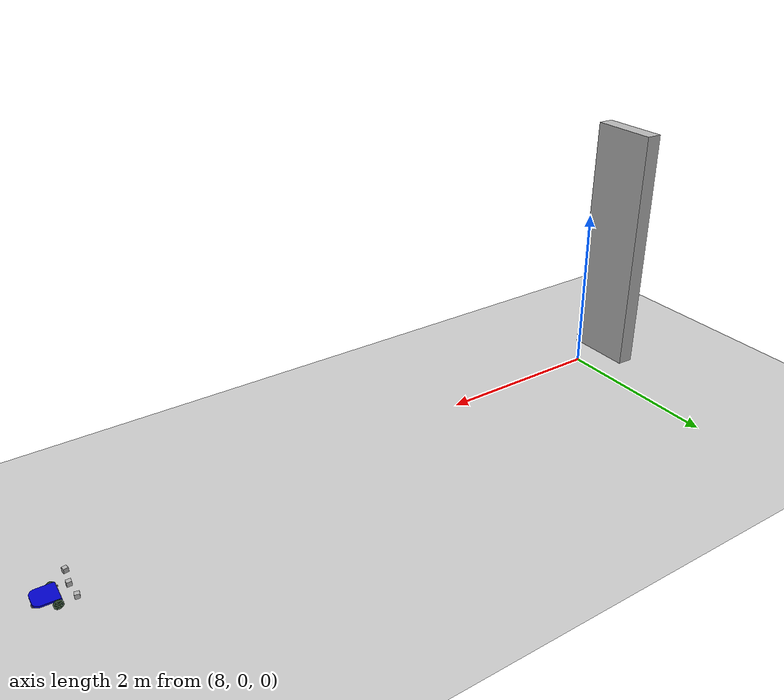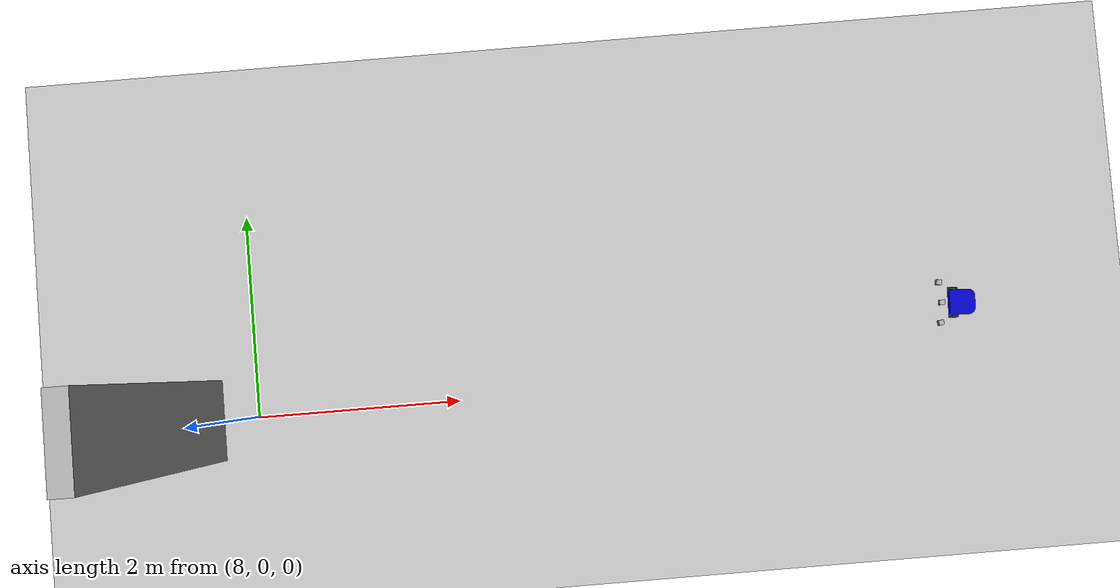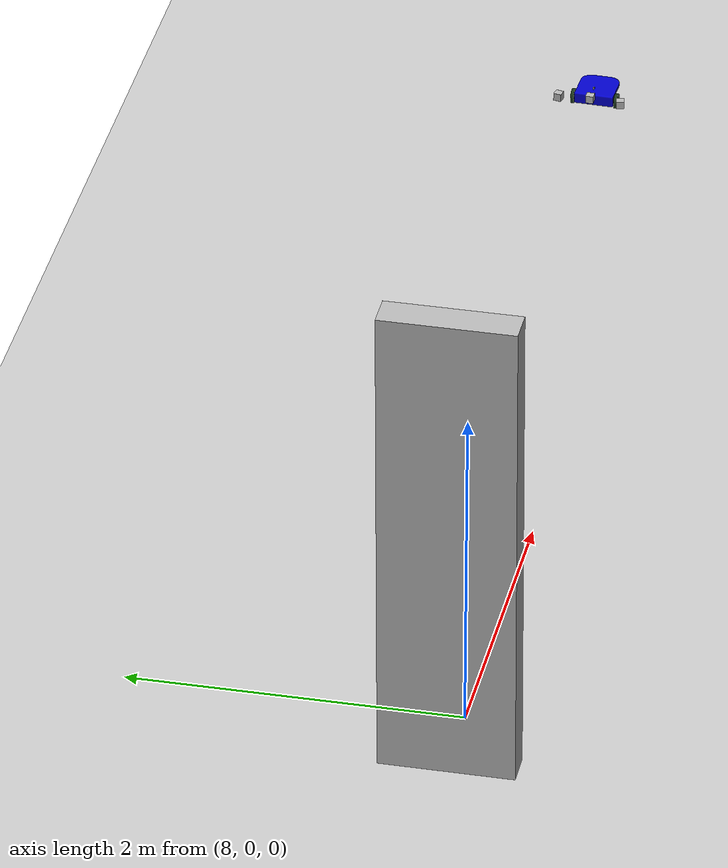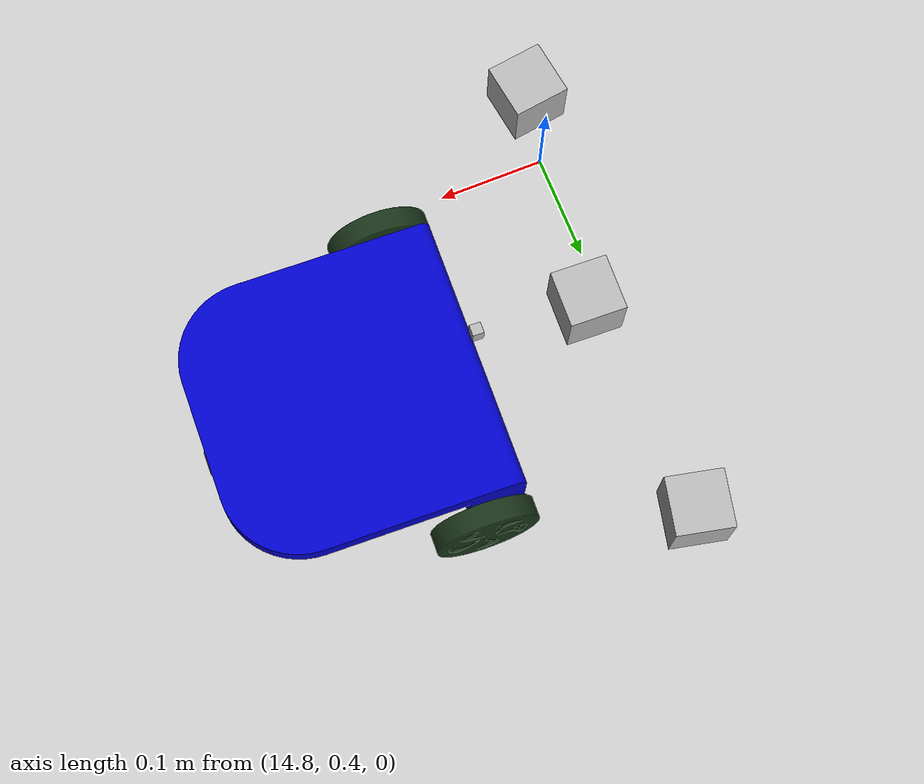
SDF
<sdf version="1.7">
 <world name="default">
  <light name="sun" type="directional">
   <cast_shadows>0</cast_shadows>
   <pose>0 0 10 0 -0 0</pose>
   <diffuse>0.8 0.8 0.8 1</diffuse>
   <specular>0.2 0.2 0.2 1</specular>
   <attenuation>
    <range>1000</range>
    <constant>0.9</constant>
    <linear>0.01</linear>
    <quadratic>0.001</quadratic>
   </attenuation>
   <direction>-0.5 0.1 -0.9</direction>
   <spot><inner_angle>0</inner_angle><outer_angle>0</outer_angle><falloff>0</falloff></spot>
  </light>
  <model name="pedestrian2">
   <pose>7.50894 0.00077 1.50436 0.000421 -0.025511 -0.002092</pose>
   <link name="link">
    <collision name="collision"><geometry><box><size>0.2 0.75 3</size></box></geometry></collision>
    <visual name="visual"><geometry><box><size>0.2 0.8 3</size></box></geometry></visual>
    <inertial>
     <inertia><ixx>1</ixx><ixy>0</ixy><ixz>0</ixz><iyy>1</iyy><iyz>0</iyz><izz>1</izz></inertia>
     <mass>1</mass>
    </inertial>
   </link>
   <plugin name="push_animate_2" filename="libanimated_box.so"/>
  </model>
  <model name="ground_plane">
   <static>1</static>
   <link name="link">
    <collision name="collision">
     <geometry><plane><normal>0 0 1</normal><size>100 100</size></plane></geometry>
     <surface>
      <contact><collide_bitmask>65535</collide_bitmask></contact>
      <friction><ode><mu>100</mu><mu2>50</mu2></ode></friction>
     </surface>
    </collision>
    <visual name="visual">
     <cast_shadows>0</cast_shadows>
     <geometry><plane><normal>0 0 1</normal><size>100 100</size></plane></geometry>
     <material>
      <script><uri>file://media/materials/scripts/gazebo.material</uri><name>Gazebo/Grey</name></script>
     </material>
    </visual>
   </link>
  </model>
  <gravity>0 0 -9.8</gravity>
  <magnetic_field>6e-06 2.3e-05 -4.2e-05</magnetic_field>
  <atmosphere type="adiabatic"/>
  <physics type="ode">
   <max_step_size>0.001</max_step_size>
   <real_time_factor>1</real_time_factor>
   <real_time_update_rate>1000</real_time_update_rate>
  </physics>
  <scene><ambient>0.4 0.4 0.4 1</ambient><background>0.7 0.7 0.7 1</background><shadows>0</shadows></scene>
  <spherical_coordinates>
   <surface_model>EARTH_WGS84</surface_model>
   <latitude_deg>0</latitude_deg>
   <longitude_deg>0</longitude_deg>
   <elevation>0</elevation>
   <heading_deg>0</heading_deg>
  </spherical_coordinates>
  <model name="/">
   <link name="base_footprint">
    <inertial>
     <pose>-0.107998 0 0.066091 0 -0 0</pose>
     <mass>3.97804</mass>
     <inertia>
      <ixx>0.0218636</ixx>
      <ixy>0</ixy>
      <ixz>0.0100199</ixz>
      <iyy>0.0785781</iyy>
      <iyz>0</iyz>
      <izz>0.0919777</izz>
     </inertia>
    </inertial>
    <collision name="base_footprint_fixed_joint_lump__base_link_collision">
     <pose>-0.125 0 0.08188 0 -0 0</pose>
     <geometry><box><size>0.25 0.25 0.02</size></box></geometry>
    </collision>
    <collision name="base_footprint_fixed_joint_lump__camera_left_link_collision_1">
     <pose>0.12 -0.2 0.12688 0 0 -1.75</pose>
     <geometry><box><size>0.05 0.05 0.05</size></box></geometry>
    </collision>
    <collision name="base_footprint_fixed_joint_lump__camera_right_link_collision_2">
     <pose>0.12 0.2 0.12688 0 -0 1.75</pose>
     <geometry><box><size>0.05 0.05 0.05</size></box></geometry>
    </collision>
    <collision name="base_footprint_fixed_joint_lump__imu_link_collision_3">
     <pose>0 0 0.14188 0 -0 0</pose>
     <geometry><box><size>0.01 0.01 0.015</size></box></geometry>
    </collision>
    <collision name="base_footprint_fixed_joint_lump__stereo_camera_link_collision_4">
     <pose>0.1 0 0.12688 0 -0 0</pose>
     <geometry><box><size>0.05 0.05 0.05</size></box></geometry>
    </collision>
    <visual name="base_footprint_fixed_joint_lump__base_link_visual">
     <pose>0 0 0.09188 0 -0 0</pose>
     <geometry>
      <mesh>
       <scale>1 1 1</scale>
       <uri>/home/ikemura/ROS_workspaces/HKUST_RGD_SIM/src/onebot_description/meshes/base_link.dae</uri>
      </mesh>
     </geometry>
    </visual>
    <visual name="base_footprint_fixed_joint_lump__camera_left_link_visual_1">
     <pose>0.12 -0.2 0.12688 0 0 -1.75</pose>
     <geometry><box><size>0.05 0.05 0.05</size></box></geometry>
    </visual>
    <visual name="base_footprint_fixed_joint_lump__camera_right_link_visual_2">
     <pose>0.12 0.2 0.12688 0 -0 1.75</pose>
     <geometry><box><size>0.05 0.05 0.05</size></box></geometry>
    </visual>
    <visual name="base_footprint_fixed_joint_lump__imu_link_visual_3">
     <pose>0 0 0.14188 0 -0 0</pose>
     <geometry><box><size>0.01 0.01 0.015</size></box></geometry>
    </visual>
    <visual name="base_footprint_fixed_joint_lump__stereo_camera_link_visual_4">
     <pose>0.1 0 0.12688 0 -0 0</pose>
     <geometry><box><size>0.05 0.05 0.05</size></box></geometry>
    </visual>
    <sensor name="camera1" type="camera">
     <update_rate>30</update_rate>
     <camera name="head">
      <horizontal_fov>1.39626</horizontal_fov>
      <image><width>800</width><height>800</height><format>R8G8B8</format></image>
      <clip><near>0.02</near><far>300</far></clip>
      <noise><type>gaussian</type><mean>0</mean><stddev>0.007</stddev></noise>
     </camera>
     <plugin name="camera_controller" filename="libgazebo_ros_camera.so">
      <alwaysOn>1</alwaysOn>
      <updateRate>0.0</updateRate>
      <cameraName>onebot/left</cameraName>
      <imageTopicName>image_raw</imageTopicName>
      <cameraInfoTopicName>camera_info</cameraInfoTopicName>
      <frameName>camera_left_link</frameName>
      <hackBaseline>0.07</hackBaseline>
      <distortionK1>0.0</distortionK1>
      <distortionK2>0.0</distortionK2>
      <distortionK3>0.0</distortionK3>
      <distortionT1>0.0</distortionT1>
      <distortionT2>0.0</distortionT2>
      <robotNamespace>/</robotNamespace>
     </plugin>
     <pose>0.12 -0.2 0.12688 0 0 -1.75</pose>
    </sensor>
    <sensor name="camera1" type="camera">
     <update_rate>30</update_rate>
     <camera name="head">
      <horizontal_fov>1.39626</horizontal_fov>
      <image><width>800</width><height>800</height><format>R8G8B8</format></image>
      <clip><near>0.02</near><far>300</far></clip>
      <noise><type>gaussian</type><mean>0</mean><stddev>0.007</stddev></noise>
     </camera>
     <plugin name="camera_controller" filename="libgazebo_ros_camera.so">
      <alwaysOn>1</alwaysOn>
      <updateRate>0.0</updateRate>
      <cameraName>onebot/right</cameraName>
      <imageTopicName>image_raw</imageTopicName>
      <cameraInfoTopicName>camera_info</cameraInfoTopicName>
      <frameName>camera_right_link</frameName>
      <hackBaseline>0.07</hackBaseline>
      <distortionK1>0.0</distortionK1>
      <distortionK2>0.0</distortionK2>
      <distortionK3>0.0</distortionK3>
      <distortionT1>0.0</distortionT1>
      <distortionT2>0.0</distortionT2>
      <robotNamespace>/</robotNamespace>
     </plugin>
     <pose>0.12 0.2 0.12688 0 -0 1.75</pose>
    </sensor>
    <sensor name="imu_sensor" type="imu">
     <always_on>1</always_on>
     <update_rate>100</update_rate>
     <visualize>1</visualize>
     <topic>__default_topic__</topic>
     <plugin name="imu_plugin" filename="libgazebo_ros_imu_sensor.so">
      <topicName>imu</topicName>
      <bodyName>imu_link</bodyName>
      <updateRateHZ>100.0</updateRateHZ>
      <gaussianNoise>0.0</gaussianNoise>
      <xyzOffset>0 0 0</xyzOffset>
      <rpyOffset>0 0 0</rpyOffset>
      <frameName>imu_link</frameName>
      <initialOrientationAsReference>0</initialOrientationAsReference>
      <robotNamespace>/</robotNamespace>
     </plugin>
     <pose>0 0 0.14188 0 -0 0</pose>
    </sensor>
    <sensor name="stereo_camera_link" type="depth">
     <update_rate>20</update_rate>
     <camera>
      <horizontal_fov>1.0472</horizontal_fov>
      <image><width>640</width><height>480</height><format>R8G8B8</format></image>
      <clip><near>0.05</near><far>3</far></clip>
     </camera>
     <plugin name="stereo_camera_controller" filename="libgazebo_ros_openni_kinect.so">
      <baseline>0.2</baseline>
      <alwaysOn>1</alwaysOn>
      <updateRate>1.0</updateRate>
      <cameraName>stereo_camera_ir</cameraName>
      <imageTopicName>/stereo_camera/color/image_raw</imageTopicName>
      <cameraInfoTopicName>/stereo_camera/color/camera_info</cameraInfoTopicName>
      <depthImageTopicName>/stereo_camera/depth/image_raw</depthImageTopicName>
      <depthImageInfoTopicName>/stereo_camera/depth/camera_info</depthImageInfoTopicName>
      <pointCloudTopicName>/stereo_camera/depth/points</pointCloudTopicName>
      <frameName>stereo_camera_link</frameName>
      <pointCloudCutoff>0.5</pointCloudCutoff>
      <pointCloudCutoffMax>3.0</pointCloudCutoffMax>
      <distortionK1>0.00000001</distortionK1>
      <distortionK2>0.00000001</distortionK2>
      <distortionK3>0.00000001</distortionK3>
      <distortionT1>0.00000001</distortionT1>
      <distortionT2>0.00000001</distortionT2>
      <CxPrime>0</CxPrime>
      <Cx>0</Cx>
      <Cy>0</Cy>
      <focalLength>0</focalLength>
      <hackBaseline>0</hackBaseline>
      <robotNamespace>/</robotNamespace>
     </plugin>
     <pose>0.1 0 0.12688 0 -0 0</pose>
    </sensor>
   </link>
   <joint name="left_wheel" type="revolute">
    <pose relative_to="base_footprint">-0.04 0.14 0.04688 0 -0 0</pose>
    <parent>base_footprint</parent>
    <child>left_wheel_link</child>
    <axis>
     <xyz>0 1 0</xyz>
     <limit><lower>-1e+16</lower><upper>1e+16</upper></limit>
     <dynamics>
      <damping>0.5</damping>
      <friction>100</friction>
      <spring_reference>0</spring_reference>
      <spring_stiffness>0</spring_stiffness>
     </dynamics>
    </axis>
   </joint>
   <link name="left_wheel_link">
    <pose relative_to="left_wheel">0 0 0 0 -0 0</pose>
    <inertial>
     <mass>0.144</mass>
     <inertia>
      <ixx>8.92986e-05</ixx>
      <ixy>0</ixy>
      <ixz>0</ixz>
      <iyy>0.000168983</iyy>
      <iyz>0</iyz>
      <izz>8.92986e-05</izz>
     </inertia>
    </inertial>
    <collision name="left_wheel_link_collision">
     <pose>0 0 0 1.57 -0 0</pose>
     <geometry><cylinder><length>0.02</length><radius>0.04688</radius></cylinder></geometry>
     <surface>
      <contact><ode><kp>600000</kp><kd>3</kd></ode></contact>
      <friction><ode><mu>1e+07</mu><mu2>1e+07</mu2><fdir1>1 0 0</fdir1></ode></friction>
     </surface>
    </collision>
    <visual name="left_wheel_link_visual">
     <pose>0 0 0 0 -0 1.57</pose>
     <geometry>
      <mesh>
       <scale>1 1 1</scale>
       <uri>/home/ikemura/ROS_workspaces/HKUST_RGD_SIM/src/onebot_description/meshes/wheel.dae</uri>
      </mesh>
     </geometry>
    </visual>
    <velocity_decay><linear>0.05</linear><angular>0.05</angular></velocity_decay>
   </link>
   <joint name="rear_caster" type="revolute">
    <pose relative_to="base_footprint">-0.2 0 0.06655 0 -0 0</pose>
    <parent>base_footprint</parent>
    <child>rear_caster_base</child>
    <axis>
     <xyz>0 0 1</xyz>
     <limit><lower>-1e+16</lower><upper>1e+16</upper></limit>
     <dynamics>
      <damping>0</damping>
      <friction>0.1</friction>
      <spring_reference>0</spring_reference>
      <spring_stiffness>0</spring_stiffness>
     </dynamics>
    </axis>
   </joint>
   <link name="rear_caster_base">
    <pose relative_to="rear_caster">0 0 0 0 -0 0</pose>
    <inertial>
     <pose>-0.01204 0 -0.01454 0 -0 0</pose>
     <mass>0.06597</mass>
     <inertia>
      <ixx>3.9912e-05</ixx>
      <ixy>0</ixy>
      <ixz>1.7794e-05</ixz>
      <iyy>5.0728e-05</iyy>
      <iyz>0</iyz>
      <izz>3.5261e-05</izz>
     </inertia>
    </inertial>
    <collision name="rear_caster_base_collision">
     <pose>0 0 -0.0075 0 -0 0</pose>
     <geometry><cylinder><length>0.015</length><radius>0.015</radius></cylinder></geometry>
     <surface>
      <contact><ode><kp>600000</kp><kd>3</kd></ode></contact>
      <friction><ode><mu>1e+07</mu><mu2>1e+07</mu2><fdir1>1 0 0</fdir1></ode></friction>
     </surface>
    </collision>
    <visual name="rear_caster_base_visual">
     <geometry>
      <mesh>
       <scale>1 1 1</scale>
       <uri>/home/ikemura/ROS_workspaces/HKUST_RGD_SIM/src/onebot_description/meshes/caster_base2.dae</uri>
      </mesh>
     </geometry>
    </visual>
   </link>
   <joint name="rear_cwheel" type="revolute">
    <pose relative_to="rear_caster_base">-0.02626 0 -0.042385 0 -0 0</pose>
    <parent>rear_caster_base</parent>
    <child>rear_caster_link</child>
    <axis>
     <xyz>0 1 0</xyz>
     <limit><lower>-1e+16</lower><upper>1e+16</upper></limit>
     <dynamics><spring_reference>0</spring_reference><spring_stiffness>0</spring_stiffness></dynamics>
    </axis>
   </joint>
   <link name="rear_caster_link">
    <pose relative_to="rear_cwheel">0 0 0 0 -0 0</pose>
    <inertial>
     <mass>0.03837</mass>
     <inertia>
      <ixx>8.221e-06</ixx>
      <ixy>0</ixy>
      <ixz>0</ixz>
      <iyy>1.3003e-05</iyy>
      <iyz>0</iyz>
      <izz>8.221e-06</izz>
     </inertia>
    </inertial>
    <collision name="rear_caster_link_collision">
     <pose>0 0 0 1.57 -0 0</pose>
     <geometry><cylinder><length>0.011665</length><radius>0.024165</radius></cylinder></geometry>
     <surface>
      <contact><ode><kp>600000</kp><kd>3</kd></ode></contact>
      <friction><ode><mu>1e+07</mu><mu2>1e+07</mu2><fdir1>1 0 0</fdir1></ode></friction>
     </surface>
    </collision>
    <visual name="rear_caster_link_visual">
     <pose>0 0 0 1.57 -0 0</pose>
     <geometry>
      <mesh>
       <scale>1 1 1</scale>
       <uri>/home/ikemura/ROS_workspaces/HKUST_RGD_SIM/src/onebot_description/meshes/caswheel.dae</uri>
      </mesh>
     </geometry>
    </visual>
    <velocity_decay><linear>0.05</linear><angular>0.05</angular></velocity_decay>
   </link>
   <joint name="right_wheel" type="revolute">
    <pose relative_to="base_footprint">-0.04 -0.14 0.04688 0 -0 0</pose>
    <parent>base_footprint</parent>
    <child>right_wheel_link</child>
    <axis>
     <xyz>0 1 0</xyz>
     <limit><lower>-1e+16</lower><upper>1e+16</upper></limit>
     <dynamics>
      <damping>0.5</damping>
      <friction>100</friction>
      <spring_reference>0</spring_reference>
      <spring_stiffness>0</spring_stiffness>
     </dynamics>
    </axis>
   </joint>
   <link name="right_wheel_link">
    <pose relative_to="right_wheel">0 0 0 0 -0 0</pose>
    <inertial>
     <mass>0.144</mass>
     <inertia>
      <ixx>8.92986e-05</ixx>
      <ixy>0</ixy>
      <ixz>0</ixz>
      <iyy>0.000168983</iyy>
      <iyz>0</iyz>
      <izz>8.92986e-05</izz>
     </inertia>
    </inertial>
    <collision name="right_wheel_link_collision">
     <pose>0 0 0 1.57 -0 0</pose>
     <geometry><cylinder><length>0.02</length><radius>0.04688</radius></cylinder></geometry>
     <surface>
      <contact><ode><kp>600000</kp><kd>3</kd></ode></contact>
      <friction><ode><mu>1e+07</mu><mu2>1e+07</mu2><fdir1>1 0 0</fdir1></ode></friction>
     </surface>
    </collision>
    <visual name="right_wheel_link_visual">
     <pose>0 0 0 0 -0 1.57</pose>
     <geometry>
      <mesh>
       <scale>1 1 1</scale>
       <uri>/home/ikemura/ROS_workspaces/HKUST_RGD_SIM/src/onebot_description/meshes/wheel.dae</uri>
      </mesh>
     </geometry>
    </visual>
    <velocity_decay><linear>0.05</linear><angular>0.05</angular></velocity_decay>
   </link>
   <plugin name="imu_plugin" filename="libgazebo_ros_imu.so">
    <alwaysOn>1</alwaysOn>
    <bodyName>base_footprint</bodyName>
    <topicName>imu</topicName>
    <serviceName>imu_service</serviceName>
    <gaussianNoise>0.0</gaussianNoise>
    <updateRate>20.0</updateRate>
    <robotNamespace>/</robotNamespace>
   </plugin>
   <plugin name="gazebo_ros_control" filename="libgazebo_ros_control.so">
    <robotNamespace>/</robotNamespace>
    <legacyModeNS>1</legacyModeNS>
   </plugin>
   <frame name="camera_left_joint" attached_to="base_link"><pose>0.12 -0.2 0.035 0 0 -1.75</pose></frame>
   <frame name="camera_left_link" attached_to="camera_left_joint"/>
   <frame name="camera_right_joint" attached_to="base_link"><pose>0.12 0.2 0.035 0 -0 1.75</pose></frame>
   <frame name="camera_right_link" attached_to="camera_right_joint"/>
   <frame name="imu_joint" attached_to="base_link"><pose>0 0 0.05 0 -0 0</pose></frame>
   <frame name="imu_link" attached_to="imu_joint"/>
   <frame name="stereo_camera_joint" attached_to="base_link"><pose>0.1 0 0.035 0 -0 0</pose></frame>
   <frame name="stereo_camera_link" attached_to="stereo_camera_joint"/>
   <frame name="base_joint" attached_to="base_footprint"><pose>0 0 0.09188 0 -0 0</pose></frame>
   <frame name="base_link" attached_to="base_joint"/>
   <pose>14.9413 0.578004 -8e-06 -3.6e-05 -0.00014 3.10304</pose>
  </model>
 </world>
</sdf>
